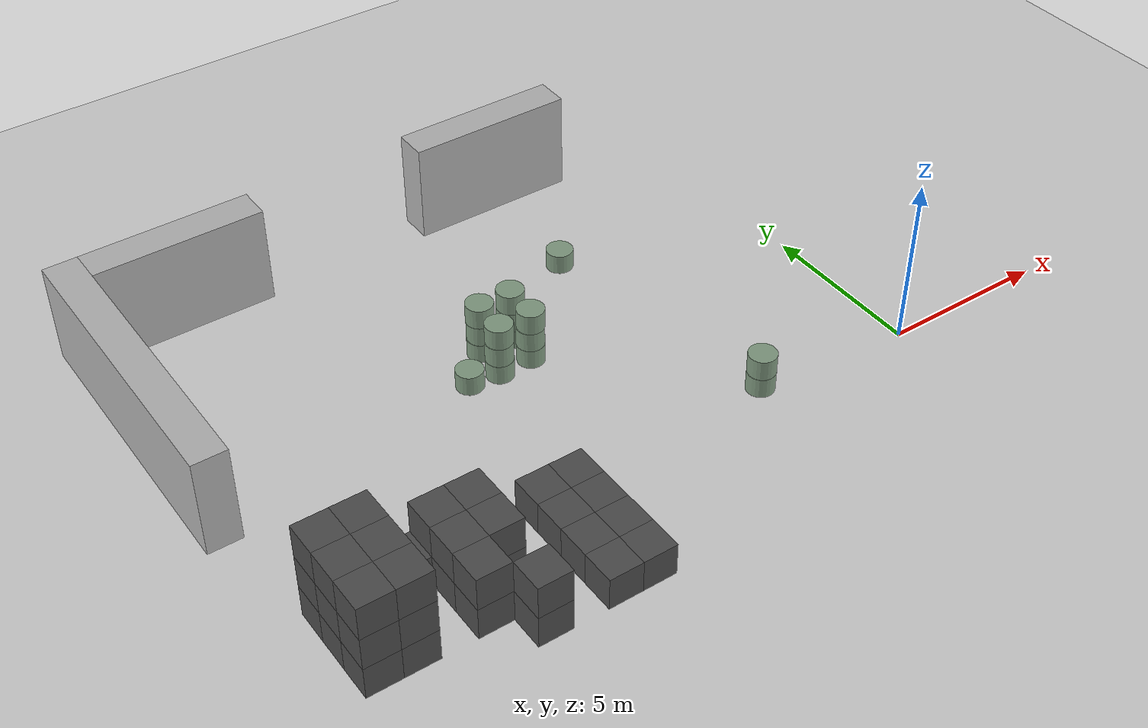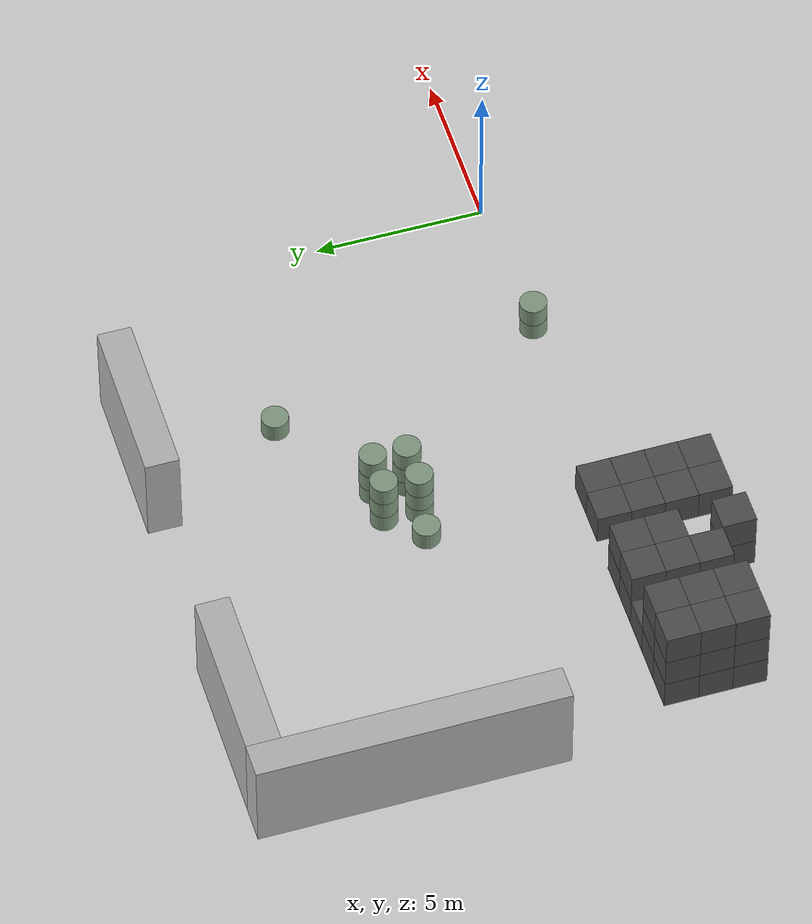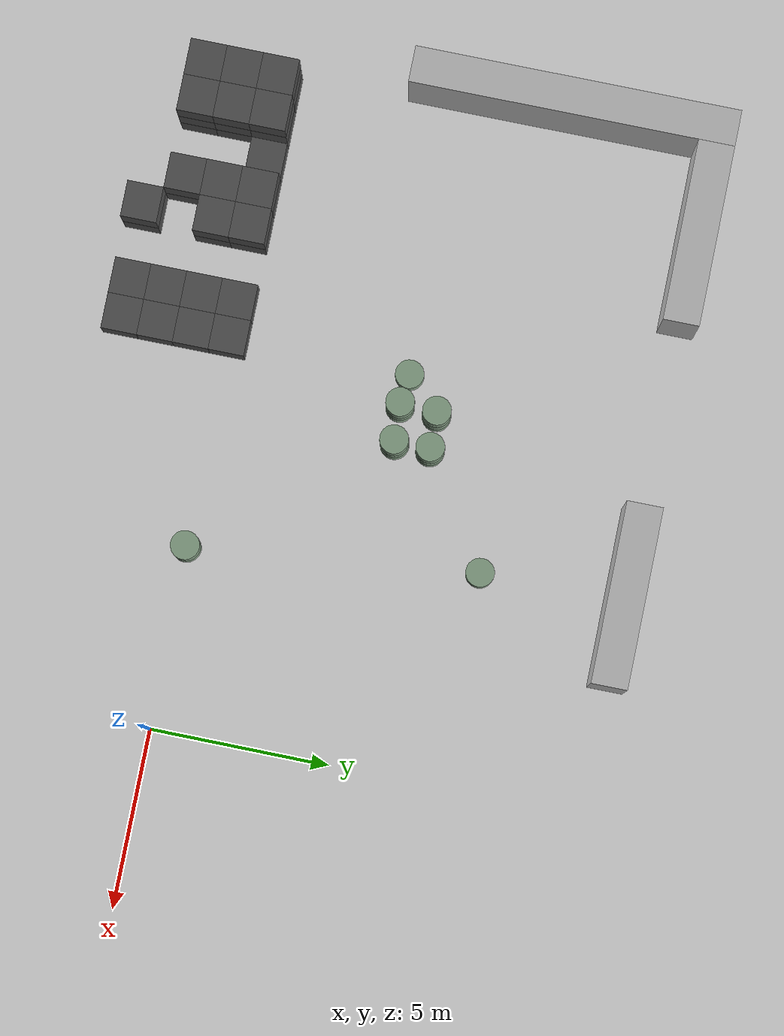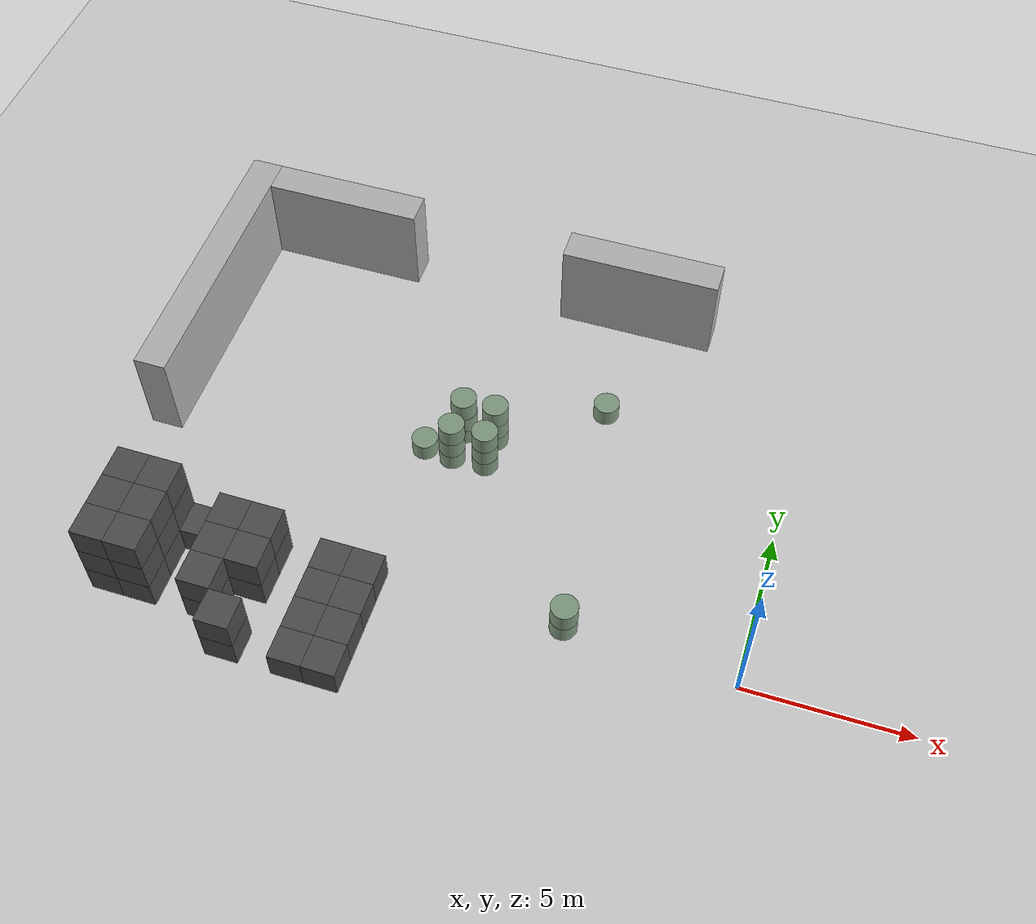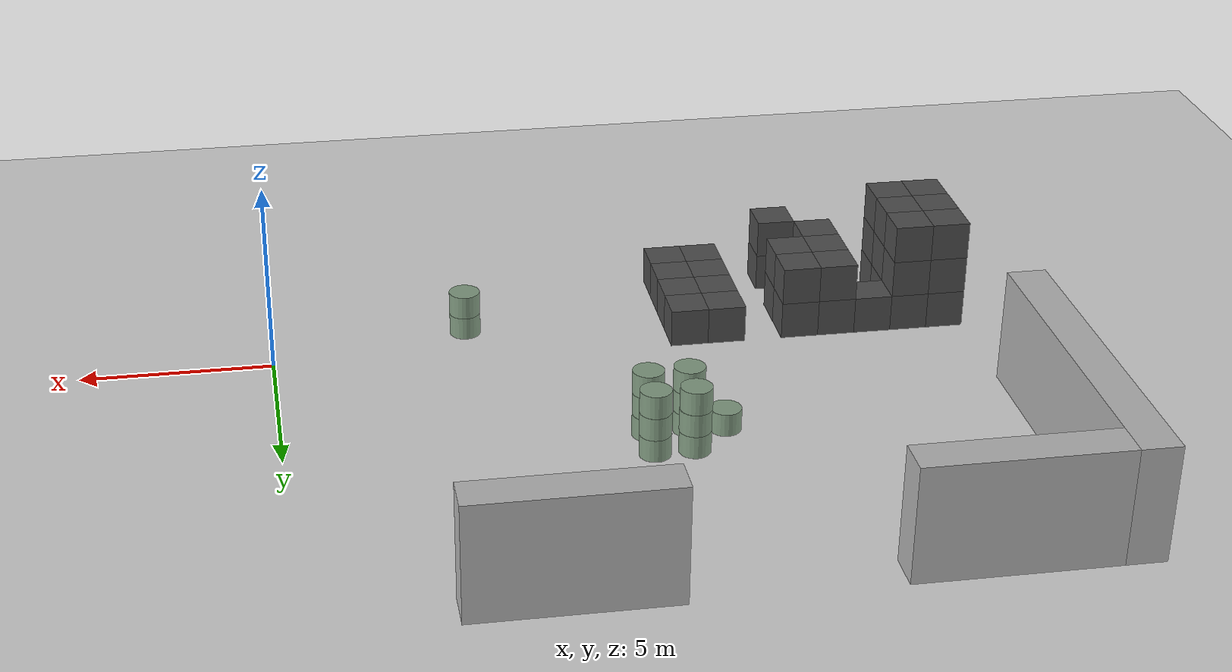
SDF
<sdf version="1.6">
 <world name="default">
  <include><uri>model://ground_plane</uri></include>
  <model name="wall_1">
   <pose>-19.0 8.0 1.5 0 -0 0</pose>
   <static>True</static>
   <link name="link">
    <inertial>
     <mass>100</mass>
     <inertia>
      <ixx>0.166667</ixx>
      <ixy>0</ixy>
      <ixz>0</ixz>
      <iyy>0.166667</iyy>
      <iyz>0</iyz>
      <izz>0.166667</izz>
     </inertia>
    </inertial>
    <collision name="collision"><geometry><box><size>1.0 9.0 3.0</size></box></geometry></collision>
    <visual name="visual">
     <geometry><box><size>1.0 9.0 3.0</size></box></geometry>
     <material><ambient>0.7 0.7 0.7 1</ambient><diffuse>0.7 0.7 0.7 1</diffuse></material>
    </visual>
   </link>
  </model>
  <model name="wall_9">
   <pose>-16.0 12.0 1.5 0 -0 0</pose>
   <static>True</static>
   <link name="link">
    <inertial>
     <mass>100</mass>
     <inertia>
      <ixx>0.166667</ixx>
      <ixy>0</ixy>
      <ixz>0</ixz>
      <iyy>0.166667</iyy>
      <iyz>0</iyz>
      <izz>0.166667</izz>
     </inertia>
    </inertial>
    <collision name="collision"><geometry><box><size>5.0 1.0 3.0</size></box></geometry></collision>
    <visual name="visual">
     <geometry><box><size>5.0 1.0 3.0</size></box></geometry>
     <material><ambient>0.7 0.7 0.7 1</ambient><diffuse>0.7 0.7 0.7 1</diffuse></material>
    </visual>
   </link>
  </model>
  <model name="wall_10">
   <pose>-6.0 12.0 1.5 0 -0 0</pose>
   <static>True</static>
   <link name="link">
    <inertial>
     <mass>100</mass>
     <inertia>
      <ixx>0.166667</ixx>
      <ixy>0</ixy>
      <ixz>0</ixz>
      <iyy>0.166667</iyy>
      <iyz>0</iyz>
      <izz>0.166667</izz>
     </inertia>
    </inertial>
    <collision name="collision"><geometry><box><size>5.0 1.0 3.0</size></box></geometry></collision>
    <visual name="visual">
     <geometry><box><size>5.0 1.0 3.0</size></box></geometry>
     <material><ambient>0.7 0.7 0.7 1</ambient><diffuse>0.7 0.7 0.7 1</diffuse></material>
    </visual>
   </link>
  </model>
  <model name="unit_box_8">
   <pose>-18.0 -2.0 0.5 0 -0 0</pose>
   <static>True</static>
   <link name="link">
    <inertial>
     <mass>100</mass>
     <inertia>
      <ixx>0.166667</ixx>
      <ixy>0</ixy>
      <ixz>0</ixz>
      <iyy>0.166667</iyy>
      <iyz>0</iyz>
      <izz>0.166667</izz>
     </inertia>
    </inertial>
    <collision name="collision"><geometry><box><size>1.0 1.0 1.0</size></box></geometry></collision>
    <visual name="visual">
     <geometry><box><size>1.0 1.0 1.0</size></box></geometry>
     <material><ambient>0.3 0.3 0.3 1</ambient><diffuse>0.3 0.3 0.3 1</diffuse></material>
    </visual>
   </link>
  </model>
  <model name="unit_box_9">
   <pose>-18.0 -2.0 1.5 0 -0 0</pose>
   <static>True</static>
   <link name="link">
    <inertial>
     <mass>100</mass>
     <inertia>
      <ixx>0.166667</ixx>
      <ixy>0</ixy>
      <ixz>0</ixz>
      <iyy>0.166667</iyy>
      <iyz>0</iyz>
      <izz>0.166667</izz>
     </inertia>
    </inertial>
    <collision name="collision"><geometry><box><size>1.0 1.0 1.0</size></box></geometry></collision>
    <visual name="visual">
     <geometry><box><size>1.0 1.0 1.0</size></box></geometry>
     <material><ambient>0.3 0.3 0.3 1</ambient><diffuse>0.3 0.3 0.3 1</diffuse></material>
    </visual>
   </link>
  </model>
  <model name="unit_box_10">
   <pose>-18.0 -2.0 2.5 0 -0 0</pose>
   <static>True</static>
   <link name="link">
    <inertial>
     <mass>100</mass>
     <inertia>
      <ixx>0.166667</ixx>
      <ixy>0</ixy>
      <ixz>0</ixz>
      <iyy>0.166667</iyy>
      <iyz>0</iyz>
      <izz>0.166667</izz>
     </inertia>
    </inertial>
    <collision name="collision"><geometry><box><size>1.0 1.0 1.0</size></box></geometry></collision>
    <visual name="visual">
     <geometry><box><size>1.0 1.0 1.0</size></box></geometry>
     <material><ambient>0.3 0.3 0.3 1</ambient><diffuse>0.3 0.3 0.3 1</diffuse></material>
    </visual>
   </link>
  </model>
  <model name="unit_box_11">
   <pose>-18.0 -1.0 0.5 0 -0 0</pose>
   <static>True</static>
   <link name="link">
    <inertial>
     <mass>100</mass>
     <inertia>
      <ixx>0.166667</ixx>
      <ixy>0</ixy>
      <ixz>0</ixz>
      <iyy>0.166667</iyy>
      <iyz>0</iyz>
      <izz>0.166667</izz>
     </inertia>
    </inertial>
    <collision name="collision"><geometry><box><size>1.0 1.0 1.0</size></box></geometry></collision>
    <visual name="visual">
     <geometry><box><size>1.0 1.0 1.0</size></box></geometry>
     <material><ambient>0.3 0.3 0.3 1</ambient><diffuse>0.3 0.3 0.3 1</diffuse></material>
    </visual>
   </link>
  </model>
  <model name="unit_box_12">
   <pose>-18.0 -1.0 1.5 0 -0 0</pose>
   <static>True</static>
   <link name="link">
    <inertial>
     <mass>100</mass>
     <inertia>
      <ixx>0.166667</ixx>
      <ixy>0</ixy>
      <ixz>0</ixz>
      <iyy>0.166667</iyy>
      <iyz>0</iyz>
      <izz>0.166667</izz>
     </inertia>
    </inertial>
    <collision name="collision"><geometry><box><size>1.0 1.0 1.0</size></box></geometry></collision>
    <visual name="visual">
     <geometry><box><size>1.0 1.0 1.0</size></box></geometry>
     <material><ambient>0.3 0.3 0.3 1</ambient><diffuse>0.3 0.3 0.3 1</diffuse></material>
    </visual>
   </link>
  </model>
  <model name="unit_box_13">
   <pose>-18.0 -1.0 2.5 0 -0 0</pose>
   <static>True</static>
   <link name="link">
    <inertial>
     <mass>100</mass>
     <inertia>
      <ixx>0.166667</ixx>
      <ixy>0</ixy>
      <ixz>0</ixz>
      <iyy>0.166667</iyy>
      <iyz>0</iyz>
      <izz>0.166667</izz>
     </inertia>
    </inertial>
    <collision name="collision"><geometry><box><size>1.0 1.0 1.0</size></box></geometry></collision>
    <visual name="visual">
     <geometry><box><size>1.0 1.0 1.0</size></box></geometry>
     <material><ambient>0.3 0.3 0.3 1</ambient><diffuse>0.3 0.3 0.3 1</diffuse></material>
    </visual>
   </link>
  </model>
  <model name="unit_box_14">
   <pose>-18.0 0.0 0.5 0 -0 0</pose>
   <static>True</static>
   <link name="link">
    <inertial>
     <mass>100</mass>
     <inertia>
      <ixx>0.166667</ixx>
      <ixy>0</ixy>
      <ixz>0</ixz>
      <iyy>0.166667</iyy>
      <iyz>0</iyz>
      <izz>0.166667</izz>
     </inertia>
    </inertial>
    <collision name="collision"><geometry><box><size>1.0 1.0 1.0</size></box></geometry></collision>
    <visual name="visual">
     <geometry><box><size>1.0 1.0 1.0</size></box></geometry>
     <material><ambient>0.3 0.3 0.3 1</ambient><diffuse>0.3 0.3 0.3 1</diffuse></material>
    </visual>
   </link>
  </model>
  <model name="unit_box_15">
   <pose>-18.0 0.0 1.5 0 -0 0</pose>
   <static>True</static>
   <link name="link">
    <inertial>
     <mass>100</mass>
     <inertia>
      <ixx>0.166667</ixx>
      <ixy>0</ixy>
      <ixz>0</ixz>
      <iyy>0.166667</iyy>
      <iyz>0</iyz>
      <izz>0.166667</izz>
     </inertia>
    </inertial>
    <collision name="collision"><geometry><box><size>1.0 1.0 1.0</size></box></geometry></collision>
    <visual name="visual">
     <geometry><box><size>1.0 1.0 1.0</size></box></geometry>
     <material><ambient>0.3 0.3 0.3 1</ambient><diffuse>0.3 0.3 0.3 1</diffuse></material>
    </visual>
   </link>
  </model>
  <model name="unit_box_16">
   <pose>-18.0 0.0 2.5 0 -0 0</pose>
   <static>True</static>
   <link name="link">
    <inertial>
     <mass>100</mass>
     <inertia>
      <ixx>0.166667</ixx>
      <ixy>0</ixy>
      <ixz>0</ixz>
      <iyy>0.166667</iyy>
      <iyz>0</iyz>
      <izz>0.166667</izz>
     </inertia>
    </inertial>
    <collision name="collision"><geometry><box><size>1.0 1.0 1.0</size></box></geometry></collision>
    <visual name="visual">
     <geometry><box><size>1.0 1.0 1.0</size></box></geometry>
     <material><ambient>0.3 0.3 0.3 1</ambient><diffuse>0.3 0.3 0.3 1</diffuse></material>
    </visual>
   </link>
  </model>
  <model name="unit_box_23">
   <pose>-17.0 -2.0 0.5 0 -0 0</pose>
   <static>True</static>
   <link name="link">
    <inertial>
     <mass>100</mass>
     <inertia>
      <ixx>0.166667</ixx>
      <ixy>0</ixy>
      <ixz>0</ixz>
      <iyy>0.166667</iyy>
      <iyz>0</iyz>
      <izz>0.166667</izz>
     </inertia>
    </inertial>
    <collision name="collision"><geometry><box><size>1.0 1.0 1.0</size></box></geometry></collision>
    <visual name="visual">
     <geometry><box><size>1.0 1.0 1.0</size></box></geometry>
     <material><ambient>0.3 0.3 0.3 1</ambient><diffuse>0.3 0.3 0.3 1</diffuse></material>
    </visual>
   </link>
  </model>
  <model name="unit_box_24">
   <pose>-17.0 -2.0 1.5 0 -0 0</pose>
   <static>True</static>
   <link name="link">
    <inertial>
     <mass>100</mass>
     <inertia>
      <ixx>0.166667</ixx>
      <ixy>0</ixy>
      <ixz>0</ixz>
      <iyy>0.166667</iyy>
      <iyz>0</iyz>
      <izz>0.166667</izz>
     </inertia>
    </inertial>
    <collision name="collision"><geometry><box><size>1.0 1.0 1.0</size></box></geometry></collision>
    <visual name="visual">
     <geometry><box><size>1.0 1.0 1.0</size></box></geometry>
     <material><ambient>0.3 0.3 0.3 1</ambient><diffuse>0.3 0.3 0.3 1</diffuse></material>
    </visual>
   </link>
  </model>
  <model name="unit_box_25">
   <pose>-17.0 -2.0 2.5 0 -0 0</pose>
   <static>True</static>
   <link name="link">
    <inertial>
     <mass>100</mass>
     <inertia>
      <ixx>0.166667</ixx>
      <ixy>0</ixy>
      <ixz>0</ixz>
      <iyy>0.166667</iyy>
      <iyz>0</iyz>
      <izz>0.166667</izz>
     </inertia>
    </inertial>
    <collision name="collision"><geometry><box><size>1.0 1.0 1.0</size></box></geometry></collision>
    <visual name="visual">
     <geometry><box><size>1.0 1.0 1.0</size></box></geometry>
     <material><ambient>0.3 0.3 0.3 1</ambient><diffuse>0.3 0.3 0.3 1</diffuse></material>
    </visual>
   </link>
  </model>
  <model name="unit_box_26">
   <pose>-17.0 -1.0 0.5 0 -0 0</pose>
   <static>True</static>
   <link name="link">
    <inertial>
     <mass>100</mass>
     <inertia>
      <ixx>0.166667</ixx>
      <ixy>0</ixy>
      <ixz>0</ixz>
      <iyy>0.166667</iyy>
      <iyz>0</iyz>
      <izz>0.166667</izz>
     </inertia>
    </inertial>
    <collision name="collision"><geometry><box><size>1.0 1.0 1.0</size></box></geometry></collision>
    <visual name="visual">
     <geometry><box><size>1.0 1.0 1.0</size></box></geometry>
     <material><ambient>0.3 0.3 0.3 1</ambient><diffuse>0.3 0.3 0.3 1</diffuse></material>
    </visual>
   </link>
  </model>
  <model name="unit_box_27">
   <pose>-17.0 -1.0 1.5 0 -0 0</pose>
   <static>True</static>
   <link name="link">
    <inertial>
     <mass>100</mass>
     <inertia>
      <ixx>0.166667</ixx>
      <ixy>0</ixy>
      <ixz>0</ixz>
      <iyy>0.166667</iyy>
      <iyz>0</iyz>
      <izz>0.166667</izz>
     </inertia>
    </inertial>
    <collision name="collision"><geometry><box><size>1.0 1.0 1.0</size></box></geometry></collision>
    <visual name="visual">
     <geometry><box><size>1.0 1.0 1.0</size></box></geometry>
     <material><ambient>0.3 0.3 0.3 1</ambient><diffuse>0.3 0.3 0.3 1</diffuse></material>
    </visual>
   </link>
  </model>
  <model name="unit_box_28">
   <pose>-17.0 -1.0 2.5 0 -0 0</pose>
   <static>True</static>
   <link name="link">
    <inertial>
     <mass>100</mass>
     <inertia>
      <ixx>0.166667</ixx>
      <ixy>0</ixy>
      <ixz>0</ixz>
      <iyy>0.166667</iyy>
      <iyz>0</iyz>
      <izz>0.166667</izz>
     </inertia>
    </inertial>
    <collision name="collision"><geometry><box><size>1.0 1.0 1.0</size></box></geometry></collision>
    <visual name="visual">
     <geometry><box><size>1.0 1.0 1.0</size></box></geometry>
     <material><ambient>0.3 0.3 0.3 1</ambient><diffuse>0.3 0.3 0.3 1</diffuse></material>
    </visual>
   </link>
  </model>
  <model name="unit_box_29">
   <pose>-17.0 0.0 0.5 0 -0 0</pose>
   <static>True</static>
   <link name="link">
    <inertial>
     <mass>100</mass>
     <inertia>
      <ixx>0.166667</ixx>
      <ixy>0</ixy>
      <ixz>0</ixz>
      <iyy>0.166667</iyy>
      <iyz>0</iyz>
      <izz>0.166667</izz>
     </inertia>
    </inertial>
    <collision name="collision"><geometry><box><size>1.0 1.0 1.0</size></box></geometry></collision>
    <visual name="visual">
     <geometry><box><size>1.0 1.0 1.0</size></box></geometry>
     <material><ambient>0.3 0.3 0.3 1</ambient><diffuse>0.3 0.3 0.3 1</diffuse></material>
    </visual>
   </link>
  </model>
  <model name="unit_box_30">
   <pose>-17.0 0.0 1.5 0 -0 0</pose>
   <static>True</static>
   <link name="link">
    <inertial>
     <mass>100</mass>
     <inertia>
      <ixx>0.166667</ixx>
      <ixy>0</ixy>
      <ixz>0</ixz>
      <iyy>0.166667</iyy>
      <iyz>0</iyz>
      <izz>0.166667</izz>
     </inertia>
    </inertial>
    <collision name="collision"><geometry><box><size>1.0 1.0 1.0</size></box></geometry></collision>
    <visual name="visual">
     <geometry><box><size>1.0 1.0 1.0</size></box></geometry>
     <material><ambient>0.3 0.3 0.3 1</ambient><diffuse>0.3 0.3 0.3 1</diffuse></material>
    </visual>
   </link>
  </model>
  <model name="unit_box_31">
   <pose>-17.0 0.0 2.5 0 -0 0</pose>
   <static>True</static>
   <link name="link">
    <inertial>
     <mass>100</mass>
     <inertia>
      <ixx>0.166667</ixx>
      <ixy>0</ixy>
      <ixz>0</ixz>
      <iyy>0.166667</iyy>
      <iyz>0</iyz>
      <izz>0.166667</izz>
     </inertia>
    </inertial>
    <collision name="collision"><geometry><box><size>1.0 1.0 1.0</size></box></geometry></collision>
    <visual name="visual">
     <geometry><box><size>1.0 1.0 1.0</size></box></geometry>
     <material><ambient>0.3 0.3 0.3 1</ambient><diffuse>0.3 0.3 0.3 1</diffuse></material>
    </visual>
   </link>
  </model>
  <model name="unit_box_32">
   <pose>-16.0 0.0 0.5 0 -0 0</pose>
   <static>True</static>
   <link name="link">
    <inertial>
     <mass>100</mass>
     <inertia>
      <ixx>0.166667</ixx>
      <ixy>0</ixy>
      <ixz>0</ixz>
      <iyy>0.166667</iyy>
      <iyz>0</iyz>
      <izz>0.166667</izz>
     </inertia>
    </inertial>
    <collision name="collision"><geometry><box><size>1.0 1.0 1.0</size></box></geometry></collision>
    <visual name="visual">
     <geometry><box><size>1.0 1.0 1.0</size></box></geometry>
     <material><ambient>0.3 0.3 0.3 1</ambient><diffuse>0.3 0.3 0.3 1</diffuse></material>
    </visual>
   </link>
  </model>
  <model name="unit_box_35">
   <pose>-15.0 -2.0 0.5 0 -0 0</pose>
   <static>True</static>
   <link name="link">
    <inertial>
     <mass>100</mass>
     <inertia>
      <ixx>0.166667</ixx>
      <ixy>0</ixy>
      <ixz>0</ixz>
      <iyy>0.166667</iyy>
      <iyz>0</iyz>
      <izz>0.166667</izz>
     </inertia>
    </inertial>
    <collision name="collision"><geometry><box><size>1.0 1.0 1.0</size></box></geometry></collision>
    <visual name="visual">
     <geometry><box><size>1.0 1.0 1.0</size></box></geometry>
     <material><ambient>0.3 0.3 0.3 1</ambient><diffuse>0.3 0.3 0.3 1</diffuse></material>
    </visual>
   </link>
  </model>
  <model name="unit_box_36">
   <pose>-15.0 -2.0 1.5 0 -0 0</pose>
   <static>True</static>
   <link name="link">
    <inertial>
     <mass>100</mass>
     <inertia>
      <ixx>0.166667</ixx>
      <ixy>0</ixy>
      <ixz>0</ixz>
      <iyy>0.166667</iyy>
      <iyz>0</iyz>
      <izz>0.166667</izz>
     </inertia>
    </inertial>
    <collision name="collision"><geometry><box><size>1.0 1.0 1.0</size></box></geometry></collision>
    <visual name="visual">
     <geometry><box><size>1.0 1.0 1.0</size></box></geometry>
     <material><ambient>0.3 0.3 0.3 1</ambient><diffuse>0.3 0.3 0.3 1</diffuse></material>
    </visual>
   </link>
  </model>
  <model name="unit_box_37">
   <pose>-15.0 -1.0 0.5 0 -0 0</pose>
   <static>True</static>
   <link name="link">
    <inertial>
     <mass>100</mass>
     <inertia>
      <ixx>0.166667</ixx>
      <ixy>0</ixy>
      <ixz>0</ixz>
      <iyy>0.166667</iyy>
      <iyz>0</iyz>
      <izz>0.166667</izz>
     </inertia>
    </inertial>
    <collision name="collision"><geometry><box><size>1.0 1.0 1.0</size></box></geometry></collision>
    <visual name="visual">
     <geometry><box><size>1.0 1.0 1.0</size></box></geometry>
     <material><ambient>0.3 0.3 0.3 1</ambient><diffuse>0.3 0.3 0.3 1</diffuse></material>
    </visual>
   </link>
  </model>
  <model name="unit_box_38">
   <pose>-15.0 -1.0 1.5 0 -0 0</pose>
   <static>True</static>
   <link name="link">
    <inertial>
     <mass>100</mass>
     <inertia>
      <ixx>0.166667</ixx>
      <ixy>0</ixy>
      <ixz>0</ixz>
      <iyy>0.166667</iyy>
      <iyz>0</iyz>
      <izz>0.166667</izz>
     </inertia>
    </inertial>
    <collision name="collision"><geometry><box><size>1.0 1.0 1.0</size></box></geometry></collision>
    <visual name="visual">
     <geometry><box><size>1.0 1.0 1.0</size></box></geometry>
     <material><ambient>0.3 0.3 0.3 1</ambient><diffuse>0.3 0.3 0.3 1</diffuse></material>
    </visual>
   </link>
  </model>
  <model name="unit_box_39">
   <pose>-15.0 0.0 0.5 0 -0 0</pose>
   <static>True</static>
   <link name="link">
    <inertial>
     <mass>100</mass>
     <inertia>
      <ixx>0.166667</ixx>
      <ixy>0</ixy>
      <ixz>0</ixz>
      <iyy>0.166667</iyy>
      <iyz>0</iyz>
      <izz>0.166667</izz>
     </inertia>
    </inertial>
    <collision name="collision"><geometry><box><size>1.0 1.0 1.0</size></box></geometry></collision>
    <visual name="visual">
     <geometry><box><size>1.0 1.0 1.0</size></box></geometry>
     <material><ambient>0.3 0.3 0.3 1</ambient><diffuse>0.3 0.3 0.3 1</diffuse></material>
    </visual>
   </link>
  </model>
  <model name="unit_box_40">
   <pose>-15.0 0.0 1.5 0 -0 0</pose>
   <static>True</static>
   <link name="link">
    <inertial>
     <mass>100</mass>
     <inertia>
      <ixx>0.166667</ixx>
      <ixy>0</ixy>
      <ixz>0</ixz>
      <iyy>0.166667</iyy>
      <iyz>0</iyz>
      <izz>0.166667</izz>
     </inertia>
    </inertial>
    <collision name="collision"><geometry><box><size>1.0 1.0 1.0</size></box></geometry></collision>
    <visual name="visual">
     <geometry><box><size>1.0 1.0 1.0</size></box></geometry>
     <material><ambient>0.3 0.3 0.3 1</ambient><diffuse>0.3 0.3 0.3 1</diffuse></material>
    </visual>
   </link>
  </model>
  <model name="unit_box_43">
   <pose>-14.0 -3.0 0.5 0 -0 0</pose>
   <static>True</static>
   <link name="link">
    <inertial>
     <mass>100</mass>
     <inertia>
      <ixx>0.166667</ixx>
      <ixy>0</ixy>
      <ixz>0</ixz>
      <iyy>0.166667</iyy>
      <iyz>0</iyz>
      <izz>0.166667</izz>
     </inertia>
    </inertial>
    <collision name="collision"><geometry><box><size>1.0 1.0 1.0</size></box></geometry></collision>
    <visual name="visual">
     <geometry><box><size>1.0 1.0 1.0</size></box></geometry>
     <material><ambient>0.3 0.3 0.3 1</ambient><diffuse>0.3 0.3 0.3 1</diffuse></material>
    </visual>
   </link>
  </model>
  <model name="unit_box_44">
   <pose>-14.0 -3.0 1.5 0 -0 0</pose>
   <static>True</static>
   <link name="link">
    <inertial>
     <mass>100</mass>
     <inertia>
      <ixx>0.166667</ixx>
      <ixy>0</ixy>
      <ixz>0</ixz>
      <iyy>0.166667</iyy>
      <iyz>0</iyz>
      <izz>0.166667</izz>
     </inertia>
    </inertial>
    <collision name="collision"><geometry><box><size>1.0 1.0 1.0</size></box></geometry></collision>
    <visual name="visual">
     <geometry><box><size>1.0 1.0 1.0</size></box></geometry>
     <material><ambient>0.3 0.3 0.3 1</ambient><diffuse>0.3 0.3 0.3 1</diffuse></material>
    </visual>
   </link>
  </model>
  <model name="unit_box_45">
   <pose>-14.0 -1.0 0.5 0 -0 0</pose>
   <static>True</static>
   <link name="link">
    <inertial>
     <mass>100</mass>
     <inertia>
      <ixx>0.166667</ixx>
      <ixy>0</ixy>
      <ixz>0</ixz>
      <iyy>0.166667</iyy>
      <iyz>0</iyz>
      <izz>0.166667</izz>
     </inertia>
    </inertial>
    <collision name="collision"><geometry><box><size>1.0 1.0 1.0</size></box></geometry></collision>
    <visual name="visual">
     <geometry><box><size>1.0 1.0 1.0</size></box></geometry>
     <material><ambient>0.3 0.3 0.3 1</ambient><diffuse>0.3 0.3 0.3 1</diffuse></material>
    </visual>
   </link>
  </model>
  <model name="unit_box_46">
   <pose>-14.0 -1.0 1.5 0 -0 0</pose>
   <static>True</static>
   <link name="link">
    <inertial>
     <mass>100</mass>
     <inertia>
      <ixx>0.166667</ixx>
      <ixy>0</ixy>
      <ixz>0</ixz>
      <iyy>0.166667</iyy>
      <iyz>0</iyz>
      <izz>0.166667</izz>
     </inertia>
    </inertial>
    <collision name="collision"><geometry><box><size>1.0 1.0 1.0</size></box></geometry></collision>
    <visual name="visual">
     <geometry><box><size>1.0 1.0 1.0</size></box></geometry>
     <material><ambient>0.3 0.3 0.3 1</ambient><diffuse>0.3 0.3 0.3 1</diffuse></material>
    </visual>
   </link>
  </model>
  <model name="unit_box_47">
   <pose>-14.0 0.0 0.5 0 -0 0</pose>
   <static>True</static>
   <link name="link">
    <inertial>
     <mass>100</mass>
     <inertia>
      <ixx>0.166667</ixx>
      <ixy>0</ixy>
      <ixz>0</ixz>
      <iyy>0.166667</iyy>
      <iyz>0</iyz>
      <izz>0.166667</izz>
     </inertia>
    </inertial>
    <collision name="collision"><geometry><box><size>1.0 1.0 1.0</size></box></geometry></collision>
    <visual name="visual">
     <geometry><box><size>1.0 1.0 1.0</size></box></geometry>
     <material><ambient>0.3 0.3 0.3 1</ambient><diffuse>0.3 0.3 0.3 1</diffuse></material>
    </visual>
   </link>
  </model>
  <model name="unit_box_48">
   <pose>-14.0 0.0 1.5 0 -0 0</pose>
   <static>True</static>
   <link name="link">
    <inertial>
     <mass>100</mass>
     <inertia>
      <ixx>0.166667</ixx>
      <ixy>0</ixy>
      <ixz>0</ixz>
      <iyy>0.166667</iyy>
      <iyz>0</iyz>
      <izz>0.166667</izz>
     </inertia>
    </inertial>
    <collision name="collision"><geometry><box><size>1.0 1.0 1.0</size></box></geometry></collision>
    <visual name="visual">
     <geometry><box><size>1.0 1.0 1.0</size></box></geometry>
     <material><ambient>0.3 0.3 0.3 1</ambient><diffuse>0.3 0.3 0.3 1</diffuse></material>
    </visual>
   </link>
  </model>
  <model name="unit_box_50">
   <pose>-12.0 -3.0 0.5 0 -0 0</pose>
   <static>True</static>
   <link name="link">
    <inertial>
     <mass>100</mass>
     <inertia>
      <ixx>0.166667</ixx>
      <ixy>0</ixy>
      <ixz>0</ixz>
      <iyy>0.166667</iyy>
      <iyz>0</iyz>
      <izz>0.166667</izz>
     </inertia>
    </inertial>
    <collision name="collision"><geometry><box><size>1.0 1.0 1.0</size></box></geometry></collision>
    <visual name="visual">
     <geometry><box><size>1.0 1.0 1.0</size></box></geometry>
     <material><ambient>0.3 0.3 0.3 1</ambient><diffuse>0.3 0.3 0.3 1</diffuse></material>
    </visual>
   </link>
  </model>
  <model name="unit_box_51">
   <pose>-12.0 -2.0 0.5 0 -0 0</pose>
   <static>True</static>
   <link name="link">
    <inertial>
     <mass>100</mass>
     <inertia>
      <ixx>0.166667</ixx>
      <ixy>0</ixy>
      <ixz>0</ixz>
      <iyy>0.166667</iyy>
      <iyz>0</iyz>
      <izz>0.166667</izz>
     </inertia>
    </inertial>
    <collision name="collision"><geometry><box><size>1.0 1.0 1.0</size></box></geometry></collision>
    <visual name="visual">
     <geometry><box><size>1.0 1.0 1.0</size></box></geometry>
     <material><ambient>0.3 0.3 0.3 1</ambient><diffuse>0.3 0.3 0.3 1</diffuse></material>
    </visual>
   </link>
  </model>
  <model name="unit_box_52">
   <pose>-12.0 -1.0 0.5 0 -0 0</pose>
   <static>True</static>
   <link name="link">
    <inertial>
     <mass>100</mass>
     <inertia>
      <ixx>0.166667</ixx>
      <ixy>0</ixy>
      <ixz>0</ixz>
      <iyy>0.166667</iyy>
      <iyz>0</iyz>
      <izz>0.166667</izz>
     </inertia>
    </inertial>
    <collision name="collision"><geometry><box><size>1.0 1.0 1.0</size></box></geometry></collision>
    <visual name="visual">
     <geometry><box><size>1.0 1.0 1.0</size></box></geometry>
     <material><ambient>0.3 0.3 0.3 1</ambient><diffuse>0.3 0.3 0.3 1</diffuse></material>
    </visual>
   </link>
  </model>
  <model name="unit_box_53">
   <pose>-12.0 0.0 0.5 0 -0 0</pose>
   <static>True</static>
   <link name="link">
    <inertial>
     <mass>100</mass>
     <inertia>
      <ixx>0.166667</ixx>
      <ixy>0</ixy>
      <ixz>0</ixz>
      <iyy>0.166667</iyy>
      <iyz>0</iyz>
      <izz>0.166667</izz>
     </inertia>
    </inertial>
    <collision name="collision"><geometry><box><size>1.0 1.0 1.0</size></box></geometry></collision>
    <visual name="visual">
     <geometry><box><size>1.0 1.0 1.0</size></box></geometry>
     <material><ambient>0.3 0.3 0.3 1</ambient><diffuse>0.3 0.3 0.3 1</diffuse></material>
    </visual>
   </link>
  </model>
  <model name="unit_box_55">
   <pose>-11.0 -3.0 0.5 0 -0 0</pose>
   <static>True</static>
   <link name="link">
    <inertial>
     <mass>100</mass>
     <inertia>
      <ixx>0.166667</ixx>
      <ixy>0</ixy>
      <ixz>0</ixz>
      <iyy>0.166667</iyy>
      <iyz>0</iyz>
      <izz>0.166667</izz>
     </inertia>
    </inertial>
    <collision name="collision"><geometry><box><size>1.0 1.0 1.0</size></box></geometry></collision>
    <visual name="visual">
     <geometry><box><size>1.0 1.0 1.0</size></box></geometry>
     <material><ambient>0.3 0.3 0.3 1</ambient><diffuse>0.3 0.3 0.3 1</diffuse></material>
    </visual>
   </link>
  </model>
  <model name="unit_box_56">
   <pose>-11.0 -2.0 0.5 0 -0 0</pose>
   <static>True</static>
   <link name="link">
    <inertial>
     <mass>100</mass>
     <inertia>
      <ixx>0.166667</ixx>
      <ixy>0</ixy>
      <ixz>0</ixz>
      <iyy>0.166667</iyy>
      <iyz>0</iyz>
      <izz>0.166667</izz>
     </inertia>
    </inertial>
    <collision name="collision"><geometry><box><size>1.0 1.0 1.0</size></box></geometry></collision>
    <visual name="visual">
     <geometry><box><size>1.0 1.0 1.0</size></box></geometry>
     <material><ambient>0.3 0.3 0.3 1</ambient><diffuse>0.3 0.3 0.3 1</diffuse></material>
    </visual>
   </link>
  </model>
  <model name="unit_box_57">
   <pose>-11.0 -1.0 0.5 0 -0 0</pose>
   <static>True</static>
   <link name="link">
    <inertial>
     <mass>100</mass>
     <inertia>
      <ixx>0.166667</ixx>
      <ixy>0</ixy>
      <ixz>0</ixz>
      <iyy>0.166667</iyy>
      <iyz>0</iyz>
      <izz>0.166667</izz>
     </inertia>
    </inertial>
    <collision name="collision"><geometry><box><size>1.0 1.0 1.0</size></box></geometry></collision>
    <visual name="visual">
     <geometry><box><size>1.0 1.0 1.0</size></box></geometry>
     <material><ambient>0.3 0.3 0.3 1</ambient><diffuse>0.3 0.3 0.3 1</diffuse></material>
    </visual>
   </link>
  </model>
  <model name="unit_box_58">
   <pose>-11.0 0.0 0.5 0 -0 0</pose>
   <static>True</static>
   <link name="link">
    <inertial>
     <mass>100</mass>
     <inertia>
      <ixx>0.166667</ixx>
      <ixy>0</ixy>
      <ixz>0</ixz>
      <iyy>0.166667</iyy>
      <iyz>0</iyz>
      <izz>0.166667</izz>
     </inertia>
    </inertial>
    <collision name="collision"><geometry><box><size>1.0 1.0 1.0</size></box></geometry></collision>
    <visual name="visual">
     <geometry><box><size>1.0 1.0 1.0</size></box></geometry>
     <material><ambient>0.3 0.3 0.3 1</ambient><diffuse>0.3 0.3 0.3 1</diffuse></material>
    </visual>
   </link>
  </model>
  <model name="unit_cylinder_43">
   <pose>-10.957536679 5.05115879931 0.3 0 -0 0</pose>
   <static>True</static>
   <link name="link">
    <inertial>
     <mass>100</mass>
     <inertia><ixx>0.145833</ixx><ixy>0</ixy><ixz>0</ixz><iyy>0.145833</iyy><iyz>0</iyz><izz>0.125</izz></inertia>
    </inertial>
    <collision name="collision">
     <geometry><cylinder><radius>0.4</radius><length>0.6</length></cylinder></geometry>
     <max_contacts>100</max_contacts>
    </collision>
    <visual name="visual">
     <geometry><cylinder><radius>0.4</radius><length>0.6</length></cylinder></geometry>
     <material><ambient>0.5 0.6 0.5 1</ambient><diffuse>0.5 0.6 0.5 1</diffuse></material>
    </visual>
   </link>
  </model>
  <model name="unit_cylinder_44">
   <pose>-10.0423824989 4.96817178853 0.3 0 -0 0</pose>
   <static>True</static>
   <link name="link">
    <inertial>
     <mass>100</mass>
     <inertia><ixx>0.145833</ixx><ixy>0</ixy><ixz>0</ixz><iyy>0.145833</iyy><iyz>0</iyz><izz>0.125</izz></inertia>
    </inertial>
    <collision name="collision">
     <geometry><cylinder><radius>0.4</radius><length>0.6</length></cylinder></geometry>
     <max_contacts>100</max_contacts>
    </collision>
    <visual name="visual">
     <geometry><cylinder><radius>0.4</radius><length>0.6</length></cylinder></geometry>
     <material><ambient>0.5 0.6 0.5 1</ambient><diffuse>0.5 0.6 0.5 1</diffuse></material>
    </visual>
   </link>
  </model>
  <model name="unit_cylinder_45">
   <pose>-10.0422796964 4.97306387227 0.9 0 -0 0</pose>
   <static>True</static>
   <link name="link">
    <inertial>
     <mass>100</mass>
     <inertia><ixx>0.145833</ixx><ixy>0</ixy><ixz>0</ixz><iyy>0.145833</iyy><iyz>0</iyz><izz>0.125</izz></inertia>
    </inertial>
    <collision name="collision">
     <geometry><cylinder><radius>0.4</radius><length>0.6</length></cylinder></geometry>
     <max_contacts>100</max_contacts>
    </collision>
    <visual name="visual">
     <geometry><cylinder><radius>0.4</radius><length>0.6</length></cylinder></geometry>
     <material><ambient>0.5 0.6 0.5 1</ambient><diffuse>0.5 0.6 0.5 1</diffuse></material>
    </visual>
   </link>
  </model>
  <model name="unit_cylinder_46">
   <pose>-10.0311511902 4.97872379679 1.5 0 -0 0</pose>
   <static>True</static>
   <link name="link">
    <inertial>
     <mass>100</mass>
     <inertia><ixx>0.145833</ixx><ixy>0</ixy><ixz>0</ixz><iyy>0.145833</iyy><iyz>0</iyz><izz>0.125</izz></inertia>
    </inertial>
    <collision name="collision">
     <geometry><cylinder><radius>0.4</radius><length>0.6</length></cylinder></geometry>
     <max_contacts>100</max_contacts>
    </collision>
    <visual name="visual">
     <geometry><cylinder><radius>0.4</radius><length>0.6</length></cylinder></geometry>
     <material><ambient>0.5 0.6 0.5 1</ambient><diffuse>0.5 0.6 0.5 1</diffuse></material>
    </visual>
   </link>
  </model>
  <model name="unit_cylinder_47">
   <pose>-9.98749677295 6.00058720878 0.3 0 -0 0</pose>
   <static>True</static>
   <link name="link">
    <inertial>
     <mass>100</mass>
     <inertia><ixx>0.145833</ixx><ixy>0</ixy><ixz>0</ixz><iyy>0.145833</iyy><iyz>0</iyz><izz>0.125</izz></inertia>
    </inertial>
    <collision name="collision">
     <geometry><cylinder><radius>0.4</radius><length>0.6</length></cylinder></geometry>
     <max_contacts>100</max_contacts>
    </collision>
    <visual name="visual">
     <geometry><cylinder><radius>0.4</radius><length>0.6</length></cylinder></geometry>
     <material><ambient>0.5 0.6 0.5 1</ambient><diffuse>0.5 0.6 0.5 1</diffuse></material>
    </visual>
   </link>
  </model>
  <model name="unit_cylinder_48">
   <pose>-9.97978642724 6.00434349283 0.9 0 -0 0</pose>
   <static>True</static>
   <link name="link">
    <inertial>
     <mass>100</mass>
     <inertia><ixx>0.145833</ixx><ixy>0</ixy><ixz>0</ixz><iyy>0.145833</iyy><iyz>0</iyz><izz>0.125</izz></inertia>
    </inertial>
    <collision name="collision">
     <geometry><cylinder><radius>0.4</radius><length>0.6</length></cylinder></geometry>
     <max_contacts>100</max_contacts>
    </collision>
    <visual name="visual">
     <geometry><cylinder><radius>0.4</radius><length>0.6</length></cylinder></geometry>
     <material><ambient>0.5 0.6 0.5 1</ambient><diffuse>0.5 0.6 0.5 1</diffuse></material>
    </visual>
   </link>
  </model>
  <model name="unit_cylinder_49">
   <pose>-9.99034618047 6.00724727805 1.5 0 -0 0</pose>
   <static>True</static>
   <link name="link">
    <inertial>
     <mass>100</mass>
     <inertia><ixx>0.145833</ixx><ixy>0</ixy><ixz>0</ixz><iyy>0.145833</iyy><iyz>0</iyz><izz>0.125</izz></inertia>
    </inertial>
    <collision name="collision">
     <geometry><cylinder><radius>0.4</radius><length>0.6</length></cylinder></geometry>
     <max_contacts>100</max_contacts>
    </collision>
    <visual name="visual">
     <geometry><cylinder><radius>0.4</radius><length>0.6</length></cylinder></geometry>
     <material><ambient>0.5 0.6 0.5 1</ambient><diffuse>0.5 0.6 0.5 1</diffuse></material>
    </visual>
   </link>
  </model>
  <model name="unit_cylinder_50">
   <pose>-8.99938226262 5.0237471594 0.3 0 -0 0</pose>
   <static>True</static>
   <link name="link">
    <inertial>
     <mass>100</mass>
     <inertia><ixx>0.145833</ixx><ixy>0</ixy><ixz>0</ixz><iyy>0.145833</iyy><iyz>0</iyz><izz>0.125</izz></inertia>
    </inertial>
    <collision name="collision">
     <geometry><cylinder><radius>0.4</radius><length>0.6</length></cylinder></geometry>
     <max_contacts>100</max_contacts>
    </collision>
    <visual name="visual">
     <geometry><cylinder><radius>0.4</radius><length>0.6</length></cylinder></geometry>
     <material><ambient>0.5 0.6 0.5 1</ambient><diffuse>0.5 0.6 0.5 1</diffuse></material>
    </visual>
   </link>
  </model>
  <model name="unit_cylinder_51">
   <pose>-9.00594952643 5.03129700771 0.9 0 -0 0</pose>
   <static>True</static>
   <link name="link">
    <inertial>
     <mass>100</mass>
     <inertia><ixx>0.145833</ixx><ixy>0</ixy><ixz>0</ixz><iyy>0.145833</iyy><iyz>0</iyz><izz>0.125</izz></inertia>
    </inertial>
    <collision name="collision">
     <geometry><cylinder><radius>0.4</radius><length>0.6</length></cylinder></geometry>
     <max_contacts>100</max_contacts>
    </collision>
    <visual name="visual">
     <geometry><cylinder><radius>0.4</radius><length>0.6</length></cylinder></geometry>
     <material><ambient>0.5 0.6 0.5 1</ambient><diffuse>0.5 0.6 0.5 1</diffuse></material>
    </visual>
   </link>
  </model>
  <model name="unit_cylinder_52">
   <pose>-8.99314523384 5.02022478894 1.5 0 -0 0</pose>
   <static>True</static>
   <link name="link">
    <inertial>
     <mass>100</mass>
     <inertia><ixx>0.145833</ixx><ixy>0</ixy><ixz>0</ixz><iyy>0.145833</iyy><iyz>0</iyz><izz>0.125</izz></inertia>
    </inertial>
    <collision name="collision">
     <geometry><cylinder><radius>0.4</radius><length>0.6</length></cylinder></geometry>
     <max_contacts>100</max_contacts>
    </collision>
    <visual name="visual">
     <geometry><cylinder><radius>0.4</radius><length>0.6</length></cylinder></geometry>
     <material><ambient>0.5 0.6 0.5 1</ambient><diffuse>0.5 0.6 0.5 1</diffuse></material>
    </visual>
   </link>
  </model>
  <model name="unit_cylinder_53">
   <pose>-8.99564159095 6.01838988895 0.3 0 -0 0</pose>
   <static>True</static>
   <link name="link">
    <inertial>
     <mass>100</mass>
     <inertia><ixx>0.145833</ixx><ixy>0</ixy><ixz>0</ixz><iyy>0.145833</iyy><iyz>0</iyz><izz>0.125</izz></inertia>
    </inertial>
    <collision name="collision">
     <geometry><cylinder><radius>0.4</radius><length>0.6</length></cylinder></geometry>
     <max_contacts>100</max_contacts>
    </collision>
    <visual name="visual">
     <geometry><cylinder><radius>0.4</radius><length>0.6</length></cylinder></geometry>
     <material><ambient>0.5 0.6 0.5 1</ambient><diffuse>0.5 0.6 0.5 1</diffuse></material>
    </visual>
   </link>
  </model>
  <model name="unit_cylinder_54">
   <pose>-8.987398679 6.02975697476 0.9 0 -0 0</pose>
   <static>True</static>
   <link name="link">
    <inertial>
     <mass>100</mass>
     <inertia><ixx>0.145833</ixx><ixy>0</ixy><ixz>0</ixz><iyy>0.145833</iyy><iyz>0</iyz><izz>0.125</izz></inertia>
    </inertial>
    <collision name="collision">
     <geometry><cylinder><radius>0.4</radius><length>0.6</length></cylinder></geometry>
     <max_contacts>100</max_contacts>
    </collision>
    <visual name="visual">
     <geometry><cylinder><radius>0.4</radius><length>0.6</length></cylinder></geometry>
     <material><ambient>0.5 0.6 0.5 1</ambient><diffuse>0.5 0.6 0.5 1</diffuse></material>
    </visual>
   </link>
  </model>
  <model name="unit_cylinder_55">
   <pose>-8.98630797885 6.02565827941 1.5 0 -0 0</pose>
   <static>True</static>
   <link name="link">
    <inertial>
     <mass>100</mass>
     <inertia><ixx>0.145833</ixx><ixy>0</ixy><ixz>0</ixz><iyy>0.145833</iyy><iyz>0</iyz><izz>0.125</izz></inertia>
    </inertial>
    <collision name="collision">
     <geometry><cylinder><radius>0.4</radius><length>0.6</length></cylinder></geometry>
     <max_contacts>100</max_contacts>
    </collision>
    <visual name="visual">
     <geometry><cylinder><radius>0.4</radius><length>0.6</length></cylinder></geometry>
     <material><ambient>0.5 0.6 0.5 1</ambient><diffuse>0.5 0.6 0.5 1</diffuse></material>
    </visual>
   </link>
  </model>
  <model name="unit_cylinder_56">
   <pose>-5.97732933248 8.02501817076 0.3 0 -0 0</pose>
   <static>True</static>
   <link name="link">
    <inertial>
     <mass>100</mass>
     <inertia><ixx>0.145833</ixx><ixy>0</ixy><ixz>0</ixz><iyy>0.145833</iyy><iyz>0</iyz><izz>0.125</izz></inertia>
    </inertial>
    <collision name="collision">
     <geometry><cylinder><radius>0.4</radius><length>0.6</length></cylinder></geometry>
     <max_contacts>100</max_contacts>
    </collision>
    <visual name="visual">
     <geometry><cylinder><radius>0.4</radius><length>0.6</length></cylinder></geometry>
     <material><ambient>0.5 0.6 0.5 1</ambient><diffuse>0.5 0.6 0.5 1</diffuse></material>
    </visual>
   </link>
  </model>
  <model name="unit_cylinder_70">
   <pose>-5.05479726321 0.0228557413892 0.9 0 -0 0</pose>
   <static>True</static>
   <link name="link">
    <inertial>
     <mass>100</mass>
     <inertia><ixx>0.145833</ixx><ixy>0</ixy><ixz>0</ixz><iyy>0.145833</iyy><iyz>0</iyz><izz>0.125</izz></inertia>
    </inertial>
    <collision name="collision">
     <geometry><cylinder><radius>0.4</radius><length>0.6</length></cylinder></geometry>
     <max_contacts>100</max_contacts>
    </collision>
    <visual name="visual">
     <geometry><cylinder><radius>0.4</radius><length>0.6</length></cylinder></geometry>
     <material><ambient>0.5 0.6 0.5 1</ambient><diffuse>0.5 0.6 0.5 1</diffuse></material>
    </visual>
   </link>
  </model>
  <model name="unit_cylinder_71">
   <pose>-5.0508808942 0.0344332054339 1.5 0 -0 0</pose>
   <static>True</static>
   <link name="link">
    <inertial>
     <mass>100</mass>
     <inertia><ixx>0.145833</ixx><ixy>0</ixy><ixz>0</ixz><iyy>0.145833</iyy><iyz>0</iyz><izz>0.125</izz></inertia>
    </inertial>
    <collision name="collision">
     <geometry><cylinder><radius>0.4</radius><length>0.6</length></cylinder></geometry>
     <max_contacts>100</max_contacts>
    </collision>
    <visual name="visual">
     <geometry><cylinder><radius>0.4</radius><length>0.6</length></cylinder></geometry>
     <material><ambient>0.5 0.6 0.5 1</ambient><diffuse>0.5 0.6 0.5 1</diffuse></material>
    </visual>
   </link>
  </model>
 </world>
</sdf>
